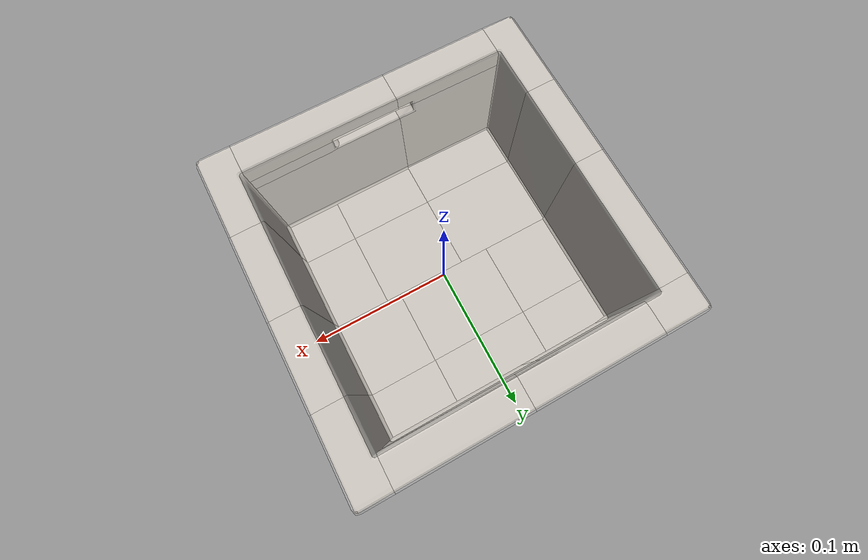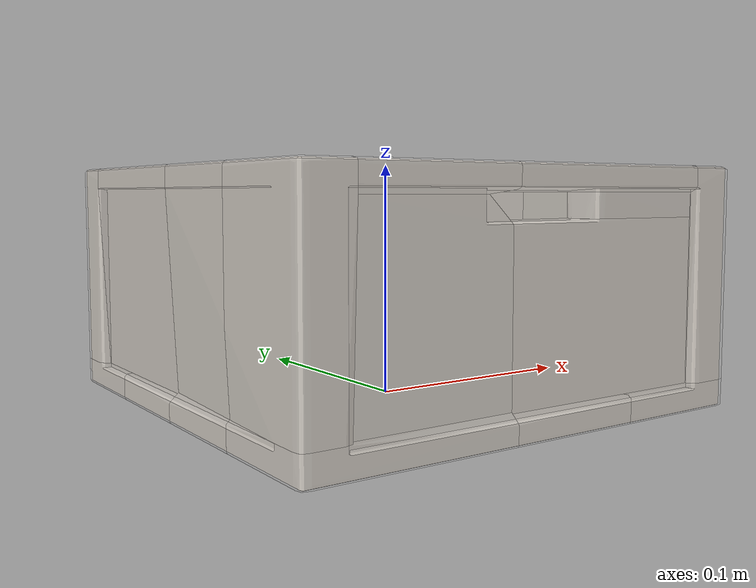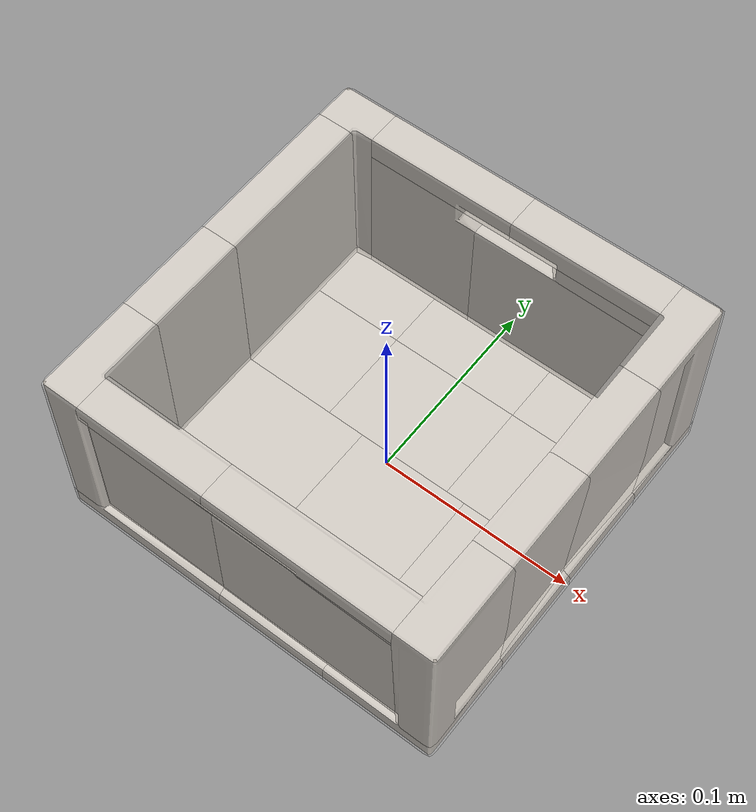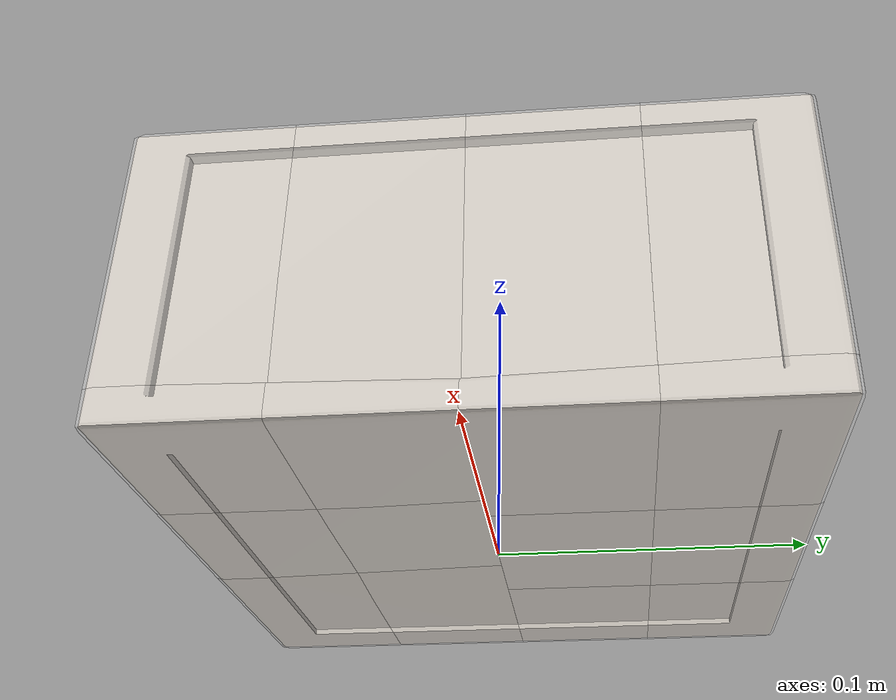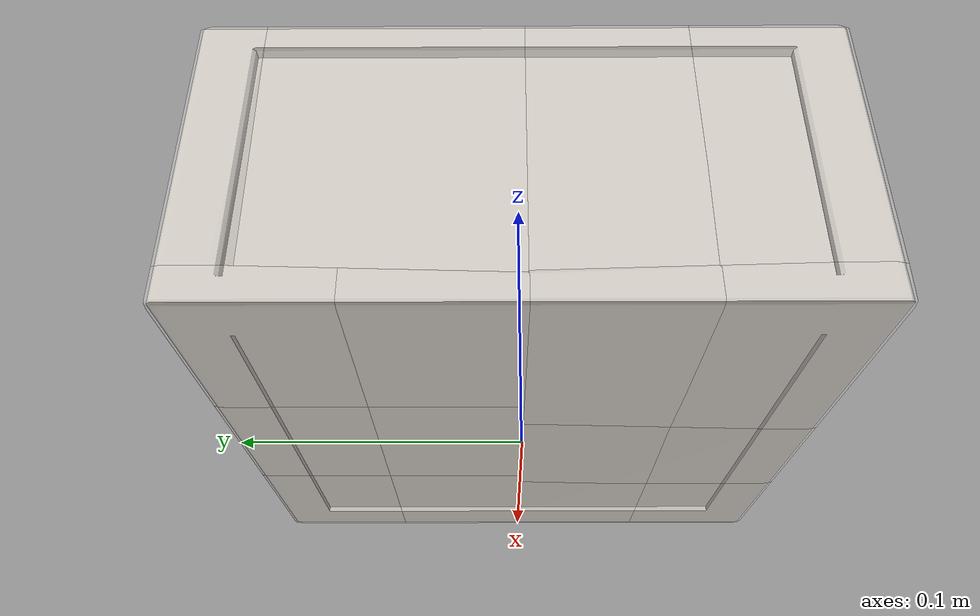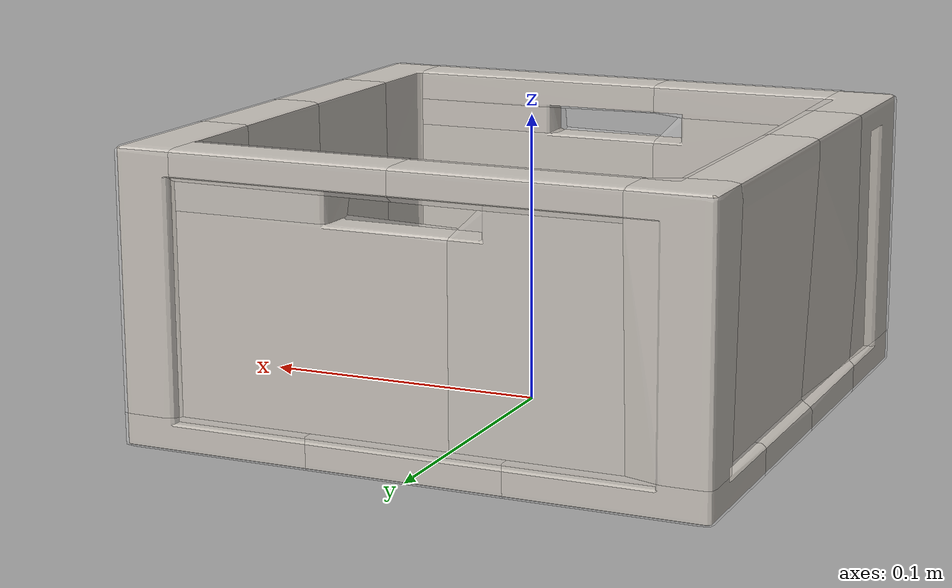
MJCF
<mujoco model="model">
  <compiler angle="radian" />
  <asset>
    <mesh file="visual/Basket040.obj" name="Basket040_vis" scale="1.00000 1.00000 0.50000" />
    <texture file="visual/T_Basket040_BC001.png" name="Basket040_material" type="2d" />
    <material name="Basket040_material" rgba="1 1 1 1.0" texture="Basket040_material" shininess="0.5" specular="0.3103448502657381" />
    <mesh file="collision/Basket040_collision_8_0.obj" name="Basket040_collision_8_0" scale="1.00000 1.00000 0.50000" />
    <mesh file="collision/Basket040_collision_9_0.obj" name="Basket040_collision_9_0" scale="1.00000 1.00000 0.50000" />
    <mesh file="collision/Basket040_collision_7_0.obj" name="Basket040_collision_7_0" scale="1.00000 1.00000 0.50000" />
    <mesh file="collision/Basket040_collision_7_1.obj" name="Basket040_collision_7_1" scale="1.00000 1.00000 0.50000" />
    <mesh file="collision/Basket040_collision_15_0.obj" name="Basket040_collision_15_0" scale="1.00000 1.00000 0.50000" />
    <mesh file="collision/Basket040_collision_14_0.obj" name="Basket040_collision_14_0" scale="1.00000 1.00000 0.50000" />
    <mesh file="collision/Basket040_collision_6_0.obj" name="Basket040_collision_6_0" scale="1.00000 1.00000 0.50000" />
    <mesh file="collision/Basket040_collision_6_1.obj" name="Basket040_collision_6_1" scale="1.00000 1.00000 0.50000" />
    <mesh file="collision/Basket040_collision_4_0.obj" name="Basket040_collision_4_0" scale="1.00000 1.00000 0.50000" />
    <mesh file="collision/Basket040_collision_4_1.obj" name="Basket040_collision_4_1" scale="1.00000 1.00000 0.50000" />
    <mesh file="collision/Basket040_collision_16_0.obj" name="Basket040_collision_16_0" scale="1.00000 1.00000 0.50000" />
    <mesh file="collision/Basket040_collision_5_0.obj" name="Basket040_collision_5_0" scale="1.00000 1.00000 0.50000" />
    <mesh file="collision/Basket040_collision_13_0.obj" name="Basket040_collision_13_0" scale="1.00000 1.00000 0.50000" />
    <mesh file="collision/Basket040_collision_13_1.obj" name="Basket040_collision_13_1" scale="1.00000 1.00000 0.50000" />
    <mesh file="collision/Basket040_collision_1_0.obj" name="Basket040_collision_1_0" scale="1.00000 1.00000 0.50000" />
    <mesh file="collision/Basket040_collision_0_0.obj" name="Basket040_collision_0_0" scale="1.00000 1.00000 0.50000" />
    <mesh file="collision/Basket040_collision_0_1.obj" name="Basket040_collision_0_1" scale="1.00000 1.00000 0.50000" />
    <mesh file="collision/Basket040_collision_0_2.obj" name="Basket040_collision_0_2" scale="1.00000 1.00000 0.50000" />
    <mesh file="collision/Basket040_collision_0_3.obj" name="Basket040_collision_0_3" scale="1.00000 1.00000 0.50000" />
    <mesh file="collision/Basket040_collision_0_4.obj" name="Basket040_collision_0_4" scale="1.00000 1.00000 0.50000" />
    <mesh file="collision/Basket040_collision_0_5.obj" name="Basket040_collision_0_5" scale="1.00000 1.00000 0.50000" />
    <mesh file="collision/Basket040_collision_12_0.obj" name="Basket040_collision_12_0" scale="1.00000 1.00000 0.50000" />
    <mesh file="collision/Basket040_collision_10_0.obj" name="Basket040_collision_10_0" scale="1.00000 1.00000 0.50000" />
    <mesh file="collision/Basket040_collision_2_0.obj" name="Basket040_collision_2_0" scale="1.00000 1.00000 0.50000" />
    <mesh file="collision/Basket040_collision_2_1.obj" name="Basket040_collision_2_1" scale="1.00000 1.00000 0.50000" />
    <mesh file="collision/Basket040_collision_2_2.obj" name="Basket040_collision_2_2" scale="1.00000 1.00000 0.50000" />
    <mesh file="collision/Basket040_collision_2_3.obj" name="Basket040_collision_2_3" scale="1.00000 1.00000 0.50000" />
    <mesh file="collision/Basket040_collision_3_0.obj" name="Basket040_collision_3_0" scale="1.00000 1.00000 0.50000" />
    <mesh file="collision/Basket040_collision_3_1.obj" name="Basket040_collision_3_1" scale="1.00000 1.00000 0.50000" />
    <mesh file="collision/Basket040_collision_11_0.obj" name="Basket040_collision_11_0" scale="1.00000 1.00000 0.50000" />
  </asset>
  <default>
    <default class="visual">
      <geom conaffinity="0" contype="0" group="1" type="mesh" density="100" />
    </default>
    <default class="collision">
      <geom group="0" rgba="1 1 1 0.25" density="100" solimp="0.95 0.98 0.001" solref="0.004 1" />
    </default>
    <default class="region">
      <geom group="1" conaffinity="0" contype="0" rgba="0 1 0 0" />
    </default>
  </default>
  <worldbody>
    <body>
      <body name="object">
        <geom mesh="Basket040_vis" type="mesh" class="visual" material="Basket040_material" />
        <geom class="collision" type="mesh" mesh="Basket040_collision_8_0" />
        <geom class="collision" type="mesh" mesh="Basket040_collision_9_0" />
        <geom class="collision" type="mesh" mesh="Basket040_collision_7_0" />
        <geom class="collision" type="mesh" mesh="Basket040_collision_7_1" />
        <geom class="collision" type="mesh" mesh="Basket040_collision_15_0" />
        <geom class="collision" type="mesh" mesh="Basket040_collision_14_0" />
        <geom class="collision" type="mesh" mesh="Basket040_collision_6_0" />
        <geom class="collision" type="mesh" mesh="Basket040_collision_6_1" />
        <geom class="collision" type="mesh" mesh="Basket040_collision_4_0" />
        <geom class="collision" type="mesh" mesh="Basket040_collision_4_1" />
        <geom class="collision" type="mesh" mesh="Basket040_collision_16_0" />
        <geom class="collision" type="mesh" mesh="Basket040_collision_5_0" />
        <geom class="collision" type="mesh" mesh="Basket040_collision_13_0" />
        <geom class="collision" type="mesh" mesh="Basket040_collision_13_1" />
        <geom class="collision" type="mesh" mesh="Basket040_collision_1_0" />
        <geom class="collision" type="mesh" mesh="Basket040_collision_0_0" />
        <geom class="collision" type="mesh" mesh="Basket040_collision_0_1" />
        <geom class="collision" type="mesh" mesh="Basket040_collision_0_2" />
        <geom class="collision" type="mesh" mesh="Basket040_collision_0_3" />
        <geom class="collision" type="mesh" mesh="Basket040_collision_0_4" />
        <geom class="collision" type="mesh" mesh="Basket040_collision_0_5" />
        <geom class="collision" type="mesh" mesh="Basket040_collision_12_0" />
        <geom class="collision" type="mesh" mesh="Basket040_collision_10_0" />
        <geom class="collision" type="mesh" mesh="Basket040_collision_2_0" />
        <geom class="collision" type="mesh" mesh="Basket040_collision_2_1" />
        <geom class="collision" type="mesh" mesh="Basket040_collision_2_2" />
        <geom class="collision" type="mesh" mesh="Basket040_collision_2_3" />
        <geom class="collision" type="mesh" mesh="Basket040_collision_3_0" />
        <geom class="collision" type="mesh" mesh="Basket040_collision_3_1" />
        <geom class="collision" type="mesh" mesh="Basket040_collision_11_0" />
        <geom class="region" name="reg_bbox" type="box" pos="0.00034 0.00000 0.04929" size="0.10110 0.10100 0.04985" />
      </body>
    </body>
  </worldbody>
</mujoco>
